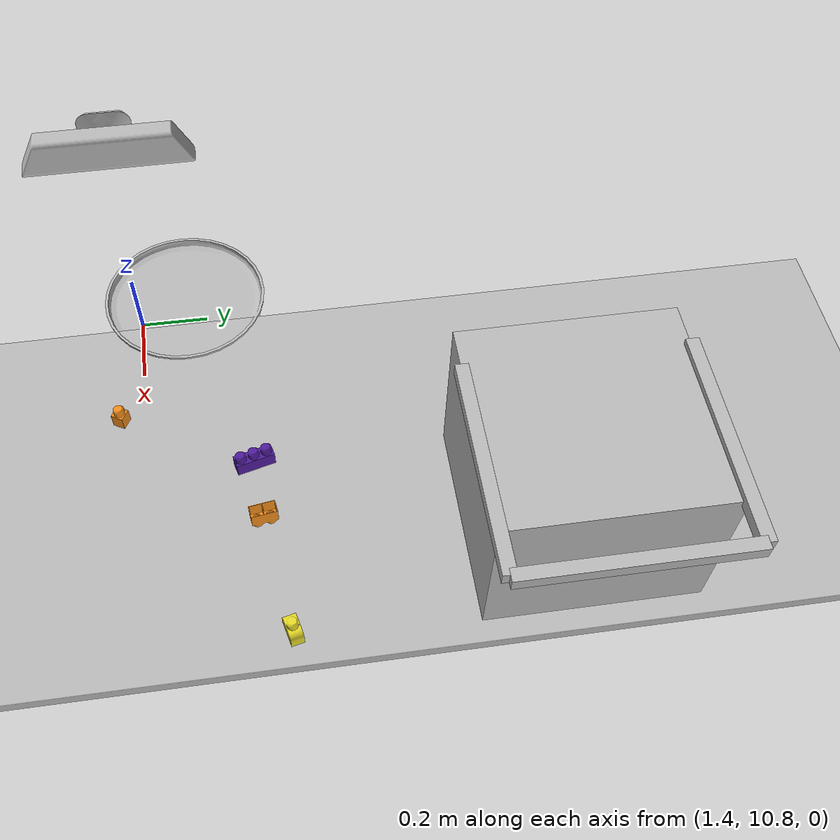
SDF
<sdf version="1.7">
 <world name="default">
  <physics type="ode">
   <max_step_size>0.001</max_step_size>
   <real_time_update_rate>1000</real_time_update_rate>
   <ode>
    <constraints>
     <cfm>0</cfm>
     <erp>0.2</erp>
     <contact_max_correcting_vel>100</contact_max_correcting_vel>
     <contact_surface_layer>0.001</contact_surface_layer>
    </constraints>
    <solver>
     <type>quick</type>
     <iters>50</iters>
     <sor>1.3</sor>
     <use_dynamic_moi_rescaling>0</use_dynamic_moi_rescaling>
    </solver>
   </ode>
   <real_time_factor>1</real_time_factor>
  </physics>
  <model name="ground_plane">
   <static>1</static>
   <link name="link">
    <collision name="collision">
     <geometry><plane><normal>0 0 1</normal><size>100 100</size></plane></geometry>
     <surface><friction><ode><mu>100</mu><mu2>50</mu2></ode></friction></surface>
    </collision>
    <visual name="visual">
     <cast_shadows>0</cast_shadows>
     <geometry><plane><normal>0 0 1</normal><size>100 100</size></plane></geometry>
     <material>
      <script><uri>file://media/materials/scripts/gazebo.material</uri><name>Gazebo/Grey</name></script>
     </material>
    </visual>
   </link>
  </model>
  <light name="sun" type="directional">
   <pose>0 0 10 0 -0 0</pose>
   <diffuse>0.8 0.8 0.8 1</diffuse>
   <specular>0.2 0.2 0.2 1</specular>
   <attenuation>
    <range>1000</range>
    <constant>0.9</constant>
    <linear>0.01</linear>
    <quadratic>0.001</quadratic>
   </attenuation>
   <direction>-0.5 0.1 -0.9</direction>
   <spot><inner_angle>0</inner_angle><outer_angle>0</outer_angle><falloff>0</falloff></spot>
  </light>
  <gravity>0 0 -9.8</gravity>
  <magnetic_field>6e-06 2.3e-05 -4.2e-05</magnetic_field>
  <atmosphere type="adiabatic"/>
  <scene><ambient>0.4 0.4 0.4 1</ambient><background>0.7 0.7 0.7 1</background><shadows>1</shadows></scene>
  <spherical_coordinates>
   <surface_model>EARTH_WGS84</surface_model>
   <latitude_deg>0</latitude_deg>
   <longitude_deg>0</longitude_deg>
   <elevation>0</elevation>
   <heading_deg>0</heading_deg>
  </spherical_coordinates>
  <model name="table_model">
   <link name="base_link">
    <inertial>
     <pose>0.013107 0 0.000971 0 -0 0</pose>
     <mass>1.03</mass>
     <inertia>
      <ixx>0.101999</ixx>
      <ixy>2.1684e-19</ixy>
      <ixz>-0.000186893</ixz>
      <iyy>0.106797</iyy>
      <iyz>2.71051e-20</iyz>
      <izz>0.107598</izz>
     </inertia>
    </inertial>
    <collision name="base_link_collision"><geometry><box><size>0.5 0.5 0.4</size></box></geometry></collision>
    <collision name="base_link_fixed_joint_lump__handle_link_l_collision_1">
     <pose>0.1 0.25 0.2 3.14159 1.57079 3.14159</pose>
     <geometry><box><size>0.03 0.03 0.5</size></box></geometry>
    </collision>
    <collision name="base_link_fixed_joint_lump__central_link_collision_2">
     <pose>0.35 0 0.200199 -1.57079 1.57079 3.14159</pose>
     <geometry><box><size>0.03 0.03 0.5</size></box></geometry>
    </collision>
    <collision name="base_link_fixed_joint_lump__handle_link_r_collision_3">
     <pose>0.1 -0.25 0.2 3.14159 1.57079 3.14159</pose>
     <geometry><box><size>0.03 0.03 0.5</size></box></geometry>
    </collision>
    <visual name="base_link_visual"><geometry><box><size>0.5 0.5 0.4</size></box></geometry></visual>
    <visual name="base_link_fixed_joint_lump__handle_link_l_visual_1">
     <pose>0.1 0.25 0.2 3.14159 1.57079 3.14159</pose>
     <geometry><box><size>0.03 0.03 0.5</size></box></geometry>
    </visual>
    <visual name="base_link_fixed_joint_lump__central_link_visual_2">
     <pose>0.35 0 0.200199 -1.57079 1.57079 3.14159</pose>
     <geometry><box><size>0.03 0.03 0.5</size></box></geometry>
    </visual>
    <visual name="base_link_fixed_joint_lump__handle_link_r_visual_3">
     <pose>0.1 -0.25 0.2 3.14159 1.57079 3.14159</pose>
     <geometry><box><size>0.03 0.03 0.5</size></box></geometry>
    </visual>
   </link>
   <static>1</static>
   <pose>2.48785 11.8422 0.633486 0 -0 0</pose>
  </model>
  <model name="_spawn"><static>1</static><link name="link"/><pose>2.4 11 0.43 0 -0 0</pose></model>
  <model name="modern_table">
   <static>1</static>
   <link name="link">
    <pose>0 0 0.74 0 -0 0</pose>
    <collision name="surface">
     <pose>0 0 -0.015 0 -0 0</pose>
     <geometry><box><size>2.35 1 0.03</size></box></geometry>
    </collision>
    <visual name="visual">
     <geometry><mesh><uri>model://modern_table/meshes/modern_table.dae</uri></mesh></geometry>
     <light type="directional" name="some_light">
      <diffuse>0.7 0.7 0.7 0</diffuse>
      <specular>1 1 1 0</specular>
      <direction>-1 -1 -1</direction>
     </light>
    </visual>
   </link>
   <pose>2.2902 11.4839 -0.303054 0 0 -1.57</pose>
  </model>
  <model name="robot_base">
   <static>1</static>
   <link name="link">
    <pose>0 0 0.73 0 -0 0</pose>
    <collision name="surface">
     <pose>0 0 -0.015 0 -0 0</pose>
     <geometry><box><size>2.35 1 0.03</size></box></geometry>
    </collision>
    <visual name="visual">
     <geometry><mesh><uri>model://robot_base/meshes/robot_base.dae</uri></mesh></geometry>
    </visual>
   </link>
   <pose>1.69872 10.9827 -0.305956 0 -0 0</pose>
  </model>
  <model name="kinect">
   <static>1</static>
   <pose>2.31569 10.9814 1.45016 0 1.57 0</pose>
   <link name="link">
    <inertial><mass>0.1</mass></inertial>
    <collision name="collision"><geometry><box><size>0.073 0.276 0.072</size></box></geometry></collision>
    <visual name="visual"><geometry><mesh><uri>model://kinect/meshes/kinect.dae</uri></mesh></geometry></visual>
    <sensor name="camera" type="depth">
     <update_rate>20</update_rate>
     <camera>
      <horizontal_fov>1.0472</horizontal_fov>
      <image><width>640</width><height>480</height><format>R8G8B8</format></image>
      <clip><near>0.05</near><far>3</far></clip>
     </camera>
     <plugin name="camera_plugin" filename="libgazebo_ros_openni_kinect.so">
      <baseline>0.2</baseline>
      <alwaysOn>1</alwaysOn>
      <updateRate>0.0</updateRate>
      <cameraName>camera_ir</cameraName>
      <imageTopicName>/camera/color/image_raw</imageTopicName>
      <cameraInfoTopicName>/camera/color/camera_info</cameraInfoTopicName>
      <depthImageTopicName>/camera/depth/image_raw</depthImageTopicName>
      <depthImageCameraInfoTopicName>/camera/depth/camera_info</depthImageCameraInfoTopicName>
      <pointCloudTopicName>/camera/depth/points</pointCloudTopicName>
      <frameName>camera_link</frameName>
      <pointCloudCutoff>0.5</pointCloudCutoff>
      <pointCloudCutoffMax>3.0</pointCloudCutoffMax>
      <distortionK1>0</distortionK1>
      <distortionK2>0</distortionK2>
      <distortionK3>0</distortionK3>
      <distortionT1>0</distortionT1>
      <distortionT2>0</distortionT2>
      <CxPrime>0</CxPrime>
      <Cx>0</Cx>
      <Cy>0</Cy>
      <focalLength>0</focalLength>
      <hackBaseline>0</hackBaseline>
     </plugin>
    </sensor>
   </link>
  </model>
  <model name="X1-Y2-Z2_1">
   <static>0</static>
   <link name="link">
    <inertial>
     <pose>0 0 0.000298 0 -0 0</pose>
     <mass>1.46269e-05</mass>
     <inertia>
      <ixx>1.001e-08</ixx>
      <ixy>4.4e-14</ixy>
      <ixz>-2.7e-13</ixz>
      <iyy>5.85e-09</iyy>
      <iyz>-2.36e-13</iyz>
      <izz>7.966e-09</izz>
     </inertia>
    </inertial>
    <visual name="visual">
     <geometry><mesh><uri>model://X1-Y2-Z2/meshes/X1-Y2-Z2.stl</uri></mesh></geometry>
     <material>
      <script><uri>file://media/materials/scripts/gazebo.material</uri><name>Gazebo/DarkYellow</name></script>
     </material>
    </visual>
    <collision name="collision">
     <geometry><mesh><uri>model://X1-Y2-Z2/meshes/X1-Y2-Z2.stl</uri></mesh></geometry>
    </collision>
   </link>
  </model>
  <model name="X1-Y2-Z2_2">
   <static>0</static>
   <link name="link">
    <inertial>
     <pose>0 0 0.000298 0 -0 0</pose>
     <mass>1.46269e-05</mass>
     <inertia>
      <ixx>1.001e-08</ixx>
      <ixy>4.4e-14</ixy>
      <ixz>-2.7e-13</ixz>
      <iyy>5.85e-09</iyy>
      <iyz>-2.36e-13</iyz>
      <izz>7.966e-09</izz>
     </inertia>
    </inertial>
    <visual name="visual">
     <geometry><mesh><uri>model://X1-Y2-Z2/meshes/X1-Y2-Z2.stl</uri></mesh></geometry>
     <material>
      <script><uri>file://media/materials/scripts/gazebo.material</uri><name>Gazebo/Orange</name></script>
     </material>
    </visual>
    <collision name="collision">
     <geometry><mesh><uri>model://X1-Y2-Z2/meshes/X1-Y2-Z2.stl</uri></mesh></geometry>
    </collision>
   </link>
   <pose>2.41911 11.1367 0.465443 3.14155 0.00022 -2.9912</pose>
  </model>
  <model name="X1-Y3-Z2_1">
   <static>0</static>
   <link name="link">
    <inertial>
     <pose>0 0 0.000633 0 -0 0</pose>
     <mass>2.12622e-05</mass>
     <inertia>
      <ixx>2.43707e-08</ixx>
      <ixy>-4.3e-14</ixy>
      <ixz>-2.7e-14</ixz>
      <iyy>8.5755e-09</iyy>
      <iyz>1.8e-14</iyz>
      <izz>2.14272e-08</izz>
     </inertia>
    </inertial>
    <visual name="visual">
     <geometry><mesh><uri>model://X1-Y3-Z2/meshes/X1-Y3-Z2.stl</uri></mesh></geometry>
     <material>
      <script><uri>file://media/materials/scripts/gazebo.material</uri><name>Gazebo/Indigo</name></script>
     </material>
    </visual>
    <collision name="collision">
     <geometry><mesh><uri>model://X1-Y3-Z2/meshes/X1-Y3-Z2.stl</uri></mesh></geometry>
    </collision>
   </link>
   <pose>2.25651 11.1267 0.465446 0.000229 3e-06 -2.88453</pose>
  </model>
  <model name="X1-Y3-Z2_2">
   <static>0</static>
   <link name="link">
    <inertial>
     <pose>0 0 0.000633 0 -0 0</pose>
     <mass>2.12622e-05</mass>
     <inertia>
      <ixx>2.43707e-08</ixx>
      <ixy>-4.3e-14</ixy>
      <ixz>-2.7e-14</ixz>
      <iyy>8.5755e-09</iyy>
      <iyz>1.8e-14</iyz>
      <izz>2.14272e-08</izz>
     </inertia>
    </inertial>
    <visual name="visual">
     <geometry><mesh><uri>model://X1-Y3-Z2/meshes/X1-Y3-Z2.stl</uri></mesh></geometry>
     <material>
      <script><uri>file://media/materials/scripts/gazebo.material</uri><name>Gazebo/Gray</name></script>
     </material>
    </visual>
    <collision name="collision">
     <geometry><mesh><uri>model://X1-Y3-Z2/meshes/X1-Y3-Z2.stl</uri></mesh></geometry>
    </collision>
   </link>
   <pose>912382 296517 911609 0 -0 0</pose>
  </model>
  <model name="X1-Y1-Z2_1">
   <static>0</static>
   <link name="link">
    <inertial>
     <pose>0 0 -0.00064 0 -0 0</pose>
     <mass>7.975e-06</mass>
     <inertia>
      <ixx>3.1065e-09</ixx>
      <ixy>2.7e-15</ixy>
      <ixz>-2.403e-13</ixz>
      <iyy>3.1066e-09</iyy>
      <iyz>-2.21e-14</iyz>
      <izz>1.97979e-09</izz>
     </inertia>
    </inertial>
    <visual name="visual">
     <geometry><mesh><uri>model://X1-Y1-Z2/meshes/X1-Y1-Z2.stl</uri></mesh></geometry>
     <material>
      <script><uri>file://media/materials/scripts/gazebo.material</uri><name>Gazebo/Orange</name></script>
     </material>
    </visual>
    <collision name="collision">
     <geometry><mesh><uri>model://X1-Y1-Z2/meshes/X1-Y1-Z2.stl</uri></mesh></geometry>
    </collision>
   </link>
   <pose>2.08709 10.81 0.465452 0.000289 -0.000107 -2.09698</pose>
  </model>
  <model name="X1-Y2-Z2-TWINFILLET_1">
   <static>0</static>
   <link name="link">
    <inertial>
     <pose>0 0 -0.002823 0 -0 0</pose>
     <mass>1.1106e-05</mass>
     <inertia>
      <ixx>6.9202e-09</ixx>
      <ixy>-4.1e-13</ixy>
      <ixz>-7e-14</ixz>
      <iyy>4.2507e-09</iyy>
      <iyz>-5.1e-13</iyz>
      <izz>5.8594e-09</izz>
     </inertia>
    </inertial>
    <visual name="visual">
     <geometry><mesh><uri>model://X1-Y2-Z2-TWINFILLET/meshes/X1-Y2-Z2-TWINFILLET.stl</uri></mesh></geometry>
     <material>
      <script><uri>file://media/materials/scripts/gazebo.material</uri><name>Gazebo/DarkYellow</name></script>
     </material>
    </visual>
    <collision name="collision">
     <geometry><mesh><uri>model://X1-Y2-Z2-TWINFILLET/meshes/X1-Y2-Z2-TWINFILLET.stl</uri></mesh></geometry>
    </collision>
   </link>
   <pose>2.70824 11.176 0.465444 6.7e-05 -5e-06 1.79979</pose>
  </model>
 </world>
</sdf>
